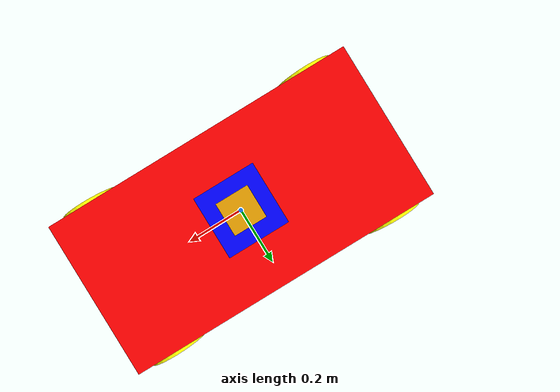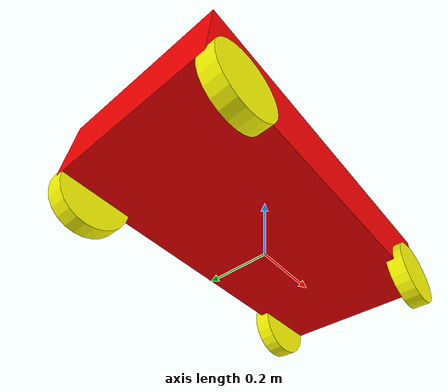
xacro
<robot xmlns:xacro="http://www.ros.org/wiki/xacro" name="robot">
  <xacro:macro name="robot" params="">
    <!-- Define robot properties -->
    <xacro:property name="robot_name" value="robot"/>

    <!-- Include RPLIDAR sensor -->
    <xacro:include filename="$(find new_robot)/urdf/rplidar.xacro"/>

    <!-- Define robot links -->
    <link name="world"/>
    <link name="base_link">
      <visual>
        <geometry>
          <box size="1 0.5 0.2"/>
        </geometry>
        <material name="red">
          <color rgba="1 0 0 1"/>
        </material>
      </visual>
      <collision>
        <geometry>
          <box size="1 0.5 0.2"/>
        </geometry>
      </collision>
      <inertial>
        <mass value="5.0"/>
        <origin xyz="0 0 0.15"/>
        <inertia ixx="0.1" ixy="0.0" ixz="0.0" iyy="0.1" iyz="0.0" izz="0.1"/>
      </inertial>
    </link>

    <!-- Define plate top link -->
    <link name="plate_top_link">
      <visual>
        <geometry>
          <box size="0.2 0.2 0.01"/>
        </geometry>
        <material name="blue">
          <color rgba="0 0 1 1"/>
        </material>
      </visual>
      <collision>
        <geometry>
          <box size="0.2 0.2 0.01"/>
        </geometry>
      </collision>
      <inertial>
        <mass value="0.1"/>
        <origin xyz="0 0 0.1"/>
        <inertia ixx="0.001" ixy="0.0" ixz="0.0" iyy="0.001" iyz="0.0" izz="0.001"/>
      </inertial>
    </link>

    <!-- Define wheels -->
    <link name="wheel_front_left">
      <visual>
        <geometry>
          <cylinder radius="0.1" length="0.05"/>
        </geometry>
        <origin xyz="0 0 0" rpy="1.5708 0 0"/>
        <material name="yellow">
          <color rgba="1 1 0 1"/>
        </material>
      </visual>
      <collision>
        <geometry>
          <cylinder radius="0.1" length="0.05"/>
        </geometry>
        <origin xyz="0 0 0" rpy="1.5708 0 0"/>
      </collision>
      <inertial>
        <mass value="0.5"/>
        <origin xyz="0 0 0"/>
        <inertia ixx="0.01" ixy="0.0" ixz="0.0" iyy="0.01" iyz="0.0" izz="0.01"/>
      </inertial>
    </link>

    <link name="wheel_front_right">
      <visual>
        <geometry>
          <cylinder radius="0.1" length="0.05"/>
        </geometry>
        <origin xyz="0 0 0" rpy="1.5708 0 0"/>
        <material name="yellow">
          <color rgba="1 1 0 1"/>
        </material>
      </visual>
      <collision>
        <geometry>
          <cylinder radius="0.1" length="0.05"/>
        </geometry>
        <origin xyz="0 0 0" rpy="1.5708 0 0"/>
      </collision>
      <inertial>
        <mass value="0.5"/>
        <origin xyz="0 0 0"/>
        <inertia ixx="0.01" ixy="0.0" ixz="0.0" iyy="0.01" iyz="0.0" izz="0.01"/>
      </inertial>
    </link>

    <link name="wheel_back_left">
      <visual>
        <geometry>
          <cylinder radius="0.1" length="0.05"/>
        </geometry>
        <origin xyz="0 0 0" rpy="1.5708 0 0"/>
        <material name="yellow">
          <color rgba="1 1 0 1"/>
        </material>
      </visual>
      <collision>
        <geometry>
          <cylinder radius="0.1" length="0.05"/>
        </geometry>
        <origin xyz="0 0 0" rpy="1.5708 0 0"/>
      </collision>
      <inertial>
        <mass value="0.5"/>
        <origin xyz="0 0 0"/>
        <inertia ixx="0.01" ixy="0.0" ixz="0.0" iyy="0.01" iyz="0.0" izz="0.01"/>
      </inertial>
    </link>

    <link name="wheel_back_right">
      <visual>
        <geometry>
          <cylinder radius="0.1" length="0.05"/>
        </geometry>
        <origin xyz="0 0 0" rpy="1.5708 0 0"/>
        <material name="yellow">
          <color rgba="1 1 0 1"/>
        </material>
      </visual>
      <collision>
        <geometry>
          <cylinder radius="0.1" length="0.05"/>
        </geometry>
        <origin xyz="0 0 0" rpy="1.5708 0 0"/>
      </collision>
      <inertial>
        <mass value="0.5"/>
        <origin xyz="0 0 0"/>
        <inertia ixx="0.01" ixy="0.0" ixz="0.0" iyy="0.01" iyz="0.0" izz="0.01"/>
      </inertial>
    </link>

    <!-- Define robot joints -->
    <joint name="base_joint" type="fixed">
      <parent link="world"/>
      <child link="base_link"/>
      <origin xyz="0 0 0.15" rpy="0 0 0"/>
    </joint>

    <joint name="plate_top_joint" type="fixed">
      <parent link="base_link"/>
      <child link="plate_top_link"/>
      <origin xyz="0 0 0.1" rpy="0 0 0"/>
    </joint>

    <joint name="joint_wheel_front_left" type="continuous">
      <parent link="base_link"/>
      <child link="wheel_front_left"/>
      <origin xyz="0.4 0.25 -0.1" rpy="0 0 0"/>
      <axis xyz="0 1 0"/>
    </joint>

    <joint name="joint_wheel_front_right" type="continuous">
      <parent link="base_link"/>
      <child link="wheel_front_right"/>
      <origin xyz="0.4 -0.25 -0.1" rpy="0 0 0"/>
      <axis xyz="0 1 0"/>
    </joint>

    <joint name="joint_wheel_back_left" type="continuous">
      <parent link="base_link"/>
      <child link="wheel_back_left"/>
      <origin xyz="-0.4 0.25 -0.1" rpy="0 0 0"/>
      <axis xyz="0 1 0"/>
    </joint>

    <joint name="joint_wheel_back_right" type="continuous">
      <parent link="base_link"/>
      <child link="wheel_back_right"/>
      <origin xyz="-0.4 -0.25 -0.1" rpy="0 0 0"/>
      <axis xyz="0 1 0"/>
    </joint>

    <!-- Add transmissions for the wheels -->
    <transmission name="trans_wheel_front_left">
      <type>transmission_interface/SimpleTransmission</type>
      <joint name="joint_wheel_front_left"/>
      <actuator name="motor_wheel_front_left">
        <hardwareInterface>EffortJointInterface</hardwareInterface>
      </actuator>
    </transmission>

    <transmission name="trans_wheel_front_right">
      <type>transmission_interface/SimpleTransmission</type>
      <joint name="joint_wheel_front_right"/>
      <actuator name="motor_wheel_front_right">
        <hardwareInterface>EffortJointInterface</hardwareInterface>
      </actuator>
    </transmission>

    <transmission name="trans_wheel_back_left">
      <type>transmission_interface/SimpleTransmission</type>
      <joint name="joint_wheel_back_left"/>
      <actuator name="motor_wheel_back_left">
        <hardwareInterface>EffortJointInterface</hardwareInterface>
      </actuator>
    </transmission>

    <transmission name="trans_wheel_back_right">
      <type>transmission_interface/SimpleTransmission</type>
      <joint name="joint_wheel_back_right"/>
      <actuator name="motor_wheel_back_right">
        <hardwareInterface>EffortJointInterface</hardwareInterface>
      </actuator>
    </transmission>
  </xacro:macro>

  <!-- Instantiate the macro -->
  <xacro:robot/>

  <!-- Rest of the robot (imu joint and gazebo plugin) -->
  <gazebo>
    <plugin name="gazebo_ros_control" filename="libgazebo_ros_control.so">
      <robotNamespace>/</robotNamespace>
    </plugin>
  </gazebo>

  <link name="imu_link"/>
  <joint name="base_to_imu" type="fixed">
    <axis rpy="0 0 0" xyz="0 0 0"/>
    <parent link="base_link"/>
    <child link="imu_link"/>
    <origin rpy="0 0 0" xyz="0 0 0"/>
  </joint>
  <gazebo reference="imu_link">
    <gravity>true</gravity>
    <sensor name="imu_sensor" type="imu">
      <always_on>true</always_on>
      <update_rate>10</update_rate>
      <visualize>true</visualize>
      <topic>imu</topic>
      <plugin filename="libgazebo_ros_imu_sensor.so" name="imu_plugin">
        <topicName>imu</topicName>
        <bodyName>imu_link</bodyName>
        <updateRateHZ>20.0</updateRateHZ>
        <gaussianNoise>0.0</gaussianNoise>
        <xyzOffset>0 0 0</xyzOffset>
        <rpyOffset>0 0 0</rpyOffset>
        <frameName>imu_link</frameName>
      </plugin>
      <pose>0 0 0 0 0 0</pose>
    </sensor>
  </gazebo>
</robot>

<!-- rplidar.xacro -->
<robot name="sensor_rplidar" xmlns:xacro="http://ros.org/wiki/xacro">
  <!-- Joints and Links, standard URDF stuff -->
  <link name="rplidar_link">
    <collision>
      <origin xyz="0 0 0" rpy="0 0 0"/>
      <geometry>
        <box size="0.1 0.1 0.1"/>
      </geometry>
    </collision>

    <visual>
      <origin xyz="0 0 -0.03125" rpy="1.5707 0 0"/>
      <geometry>
        <box size="0.1 0.1 0.1"/>
        <mesh filename="package://my_lidar_pkg/meshes/your_mesh_file.stl" scale="0.001 0.001 0.001"/>
      </geometry>
    </visual>

    <inertial>
      <mass value="1e-5"/>
      <origin xyz="0 0 0" rpy="0 0 0"/>
      <inertia ixx="1e-6" ixy="0" ixz="0" iyy="1e-6" iyz="0" izz="1e-6"/>
    </inertial>
  </link>

  <joint name="rplidar_joint" type="fixed">
    <axis xyz="0 1 0"/>
    <origin xyz="0 0 0.2" rpy="0 0 0"/>
    <parent link="base_link"/>
    <child link="rplidar_link"/>
  </joint>

  <gazebo reference="rplidar_link">
    <sensor type="gpu_ray" name="head_rplidar_sensor">
      <pose>0 0 0 0 0 0</pose>
      <visualize>true</visualize>
      <update_rate>10</update_rate>
      <ray>
        <scan>
          <horizontal>
            <samples>400</samples>
            <resolution>1</resolution>
            <min_angle>-3.14159</min_angle>
            <max_angle>3.14159</max_angle>
          </horizontal>
        </scan>
        <range>
          <min>0.15</min>
          <max>6.0</max>
          <resolution>0.01</resolution>
        </range>
        <noise>
          <type>gaussian</type>
          <mean>0.0</mean>
          <stddev>0.01</stddev>
        </noise>
      </ray>
      <plugin name="gazebo_ros_head_rplidar_controller" filename="libgazebo_ros_gpu_laser.so">
        <topicName>/scan</topicName>
        <frameName>rplidar_link</frameName>
      </plugin>
    </sensor>
  </gazebo>
</robot>
